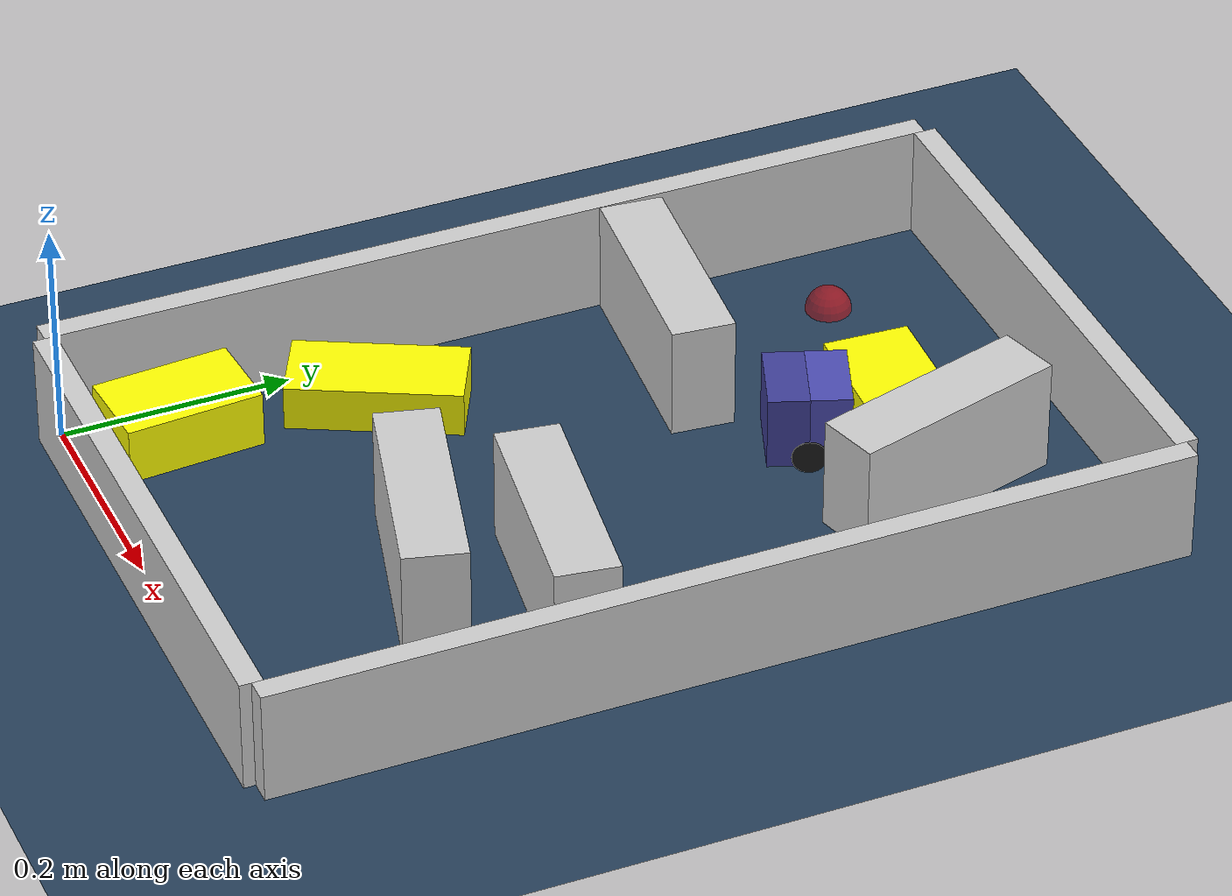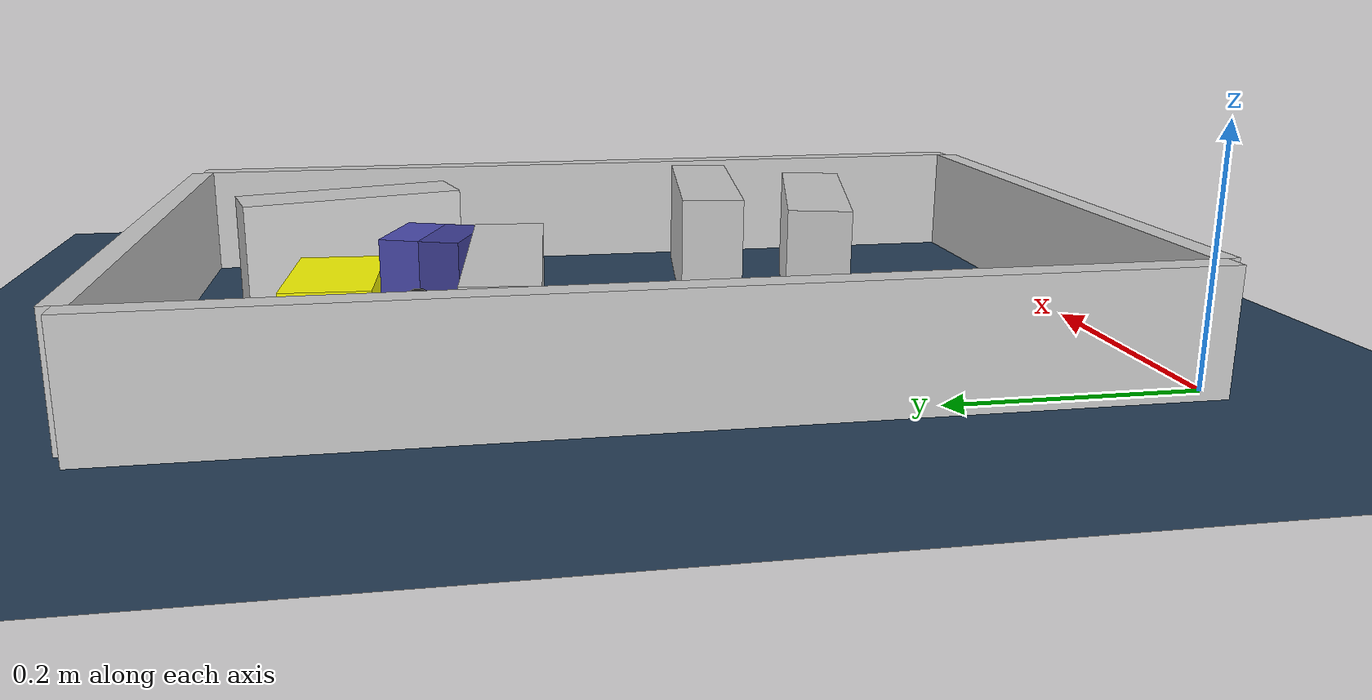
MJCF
<?xml version='1.0' encoding='utf-8'?>
<mujoco model="real_buildable">
  <compiler angle="degree" />
  <option timestep="0.002" integrator="implicitfast" iterations="100" cone="elliptic" />
  <default>
    <geom density="1" />
  </default>
  <asset>
    <texture builtin="gradient" height="3072" rgb1="0.3 0.5 0.7" rgb2="0 0 0" type="skybox" width="512" />
    <texture builtin="checker" height="300" mark="edge" markrgb="0.8 0.8 0.8" name="groundplane" rgb1="0.2 0.3 0.4" rgb2="0.1 0.2 0.3" type="2d" width="300" />
    <material name="groundplane" reflectance="0.2" texrepeat="5 5" texture="groundplane" texuniform="true" />
  </asset>
  <worldbody>
    <light dir="0 0 -1" directional="true" pos="0 0 1.5" />
    <geom name="floor" type="plane" condim="4" friction="0.5 0.005 0.001" material="groundplane" size="0 0 0.05" />
    <body name="walls">
      <geom name="wall_boundary_left" type="box" condim="4" friction="1.0 0.005 0.0001" rgba="0.8 0.8 0.8 1" pos="-0.010000 0.387500 0.050000" euler="0 0 0.000000" size="0.010000 0.397500 0.050000" />
      <geom name="wall_boundary_right" type="box" condim="4" friction="1.0 0.005 0.0001" rgba="0.8 0.8 0.8 1" pos="0.500000 0.387500 0.050000" euler="0 0 0.000000" size="0.010000 0.397500 0.050000" />
      <geom name="wall_boundary_bottom" type="box" condim="4" friction="1.0 0.005 0.0001" rgba="0.8 0.8 0.8 1" pos="0.245000 -0.010000 0.050000" euler="0 0 0.000000" size="0.245000 0.010000 0.050000" />
      <geom name="wall_boundary_top" type="box" condim="4" friction="1.0 0.005 0.0001" rgba="0.8 0.8 0.8 1" pos="0.245000 0.785000 0.050000" euler="0 0 0.000000" size="0.245000 0.010000 0.050000" />
      <geom name="wall_inner_1" type="box" condim="4" friction="1.0 0.005 0.0001" rgba="0.8 0.8 0.8 1" pos="0.302246 0.201535 0.050000" euler="0 0 -14.604486" size="0.097500 0.027500 0.050000" />
      <geom name="wall_inner_2" type="box" condim="4" friction="1.0 0.005 0.0001" rgba="0.8 0.8 0.8 1" pos="0.364854 0.292477 0.050000" euler="0 0 -8.062091" size="0.097500 0.027500 0.050000" />
      <geom name="wall_inner_3" type="box" condim="4" friction="1.0 0.005 0.0001" rgba="0.8 0.8 0.8 1" pos="0.100000 0.501000 0.050000" euler="0 0 174.900000" size="0.097500 0.027500 0.050000" />
      <geom name="wall_inner_4" type="box" condim="4" friction="1.0 0.005 0.0001" rgba="0.8 0.8 0.8 1" pos="0.354000 0.631000 0.050000" euler="0 0 105.800000" size="0.097500 0.027500 0.050000" />
    </body>
    <body name="car" pos="0.26459647958217508 0.55504406931893024 0.01" quat="0.81859256201372332 0 0 0.57437463159144531">
      <freejoint name="car_freejoint" />
      <inertial pos="0 0 0.0375" mass="0.35" diaginertia="0.000266 0.000266 0.000286" />
      <geom name="front_chassis_collision" type="box" pos="0.0175 0 0.0375" size="0.0175 0.035 0.0325" rgba="0.3 0.3 0.7 1" />
      <geom name="rear_chassis_collision" type="box" pos="-0.0175 0 0.0375" size="0.0175 0.035 0.0325" rgba="0.25 0.25 0.6 1" />
      <geom name="front_marker" type="box" pos="0.034 0 0.0505" size="0.002 0.015 0.01" rgba="1 0.2 0.2 1" contype="0" conaffinity="0" />
      <body name="rear_support_body" pos="-0.03 0 0.0025">
        <joint name="rear_caster_joint" type="ball" damping="0.0001" />
        <inertial pos="0 0 0" mass="0.025" diaginertia="0.000001 0.000001 0.000001" />
        <geom name="rear_support" type="sphere" pos="0 0 0" size="0.0025" friction="0 0 0" rgba="0.7 0.1 0.1 1" />
      </body>
      <body name="front_support_body" pos="0.03 0 0.0025">
        <joint name="front_caster_joint" type="ball" damping="0.0001" />
        <inertial pos="0 0 0" mass="0.025" diaginertia="0.000001 0.000001 0.000001" />
        <geom name="front_support" type="sphere" pos="0 0 0" size="0.0025" friction="0 0 0" rgba="0.1 0.7 0.1 1" />
      </body>
      <body name="left_wheel" pos="0 0.0375 0.015">
        <inertial pos="0 0 0" mass="0.05" diaginertia="0.000003 0.000006 0.000003" />
        <joint name="left_wheel_joint" type="hinge" axis="0 1 0" damping="0.01" armature="0.0001" />
        <geom name="left_wheel_collision" type="cylinder" size="0.015 0.0005" euler="90 0 0" rgba="0.1 0.1 0.1 1" />
      </body>
      <body name="right_wheel" pos="0 -0.0375 0.015">
        <inertial pos="0 0 0" mass="0.05" diaginertia="0.000003 0.000006 0.000003" />
        <joint name="right_wheel_joint" type="hinge" axis="0 1 0" damping="0.01" armature="0.0001" />
        <geom name="right_wheel_collision" type="cylinder" size="0.015 0.0005" euler="90 0 0" rgba="0.1 0.1 0.1 1" />
      </body>
    </body>
    <body name="obstacle_0_movable">
      <geom name="obstacle_0_movable" condim="4" pos="0.065036190608368558 0.25516837164878614 0.02" friction="1 0.005 0.0001" rgba="1 1 0 1" size="0.035000 0.075000 0.020000" type="box" mass="0.1" quat="0.23155659254010139 0 0 0.97282143502865803" />
      <joint type="free" />
    </body>
    <body name="obstacle_1_movable">
      <geom name="obstacle_1_movable" condim="4" pos="0.25174759510850075 0.638359837372657 0.025000000000000001" friction="1 0.005 0.0001" rgba="1 1 0 1" size="0.037500 0.060000 0.025000" type="box" mass="0.1" quat="0.68796227593701387 0 0 -0.72574644807092514" />
      <joint type="free" />
    </body>
    <body name="obstacle_2_movable">
      <geom name="obstacle_2_movable" condim="4" pos="0.043630000000000148 0.087460999999999761 0.025000000000000001" friction="1 0.005 0.0001" rgba="1 1 0 1" size="0.037500 0.060000 0.025000" type="box" mass="0.1" quat="0.99934662453484602 0 0 0.036143104886124724" />
      <joint type="free" />
    </body>
    <site name="goal" type="sphere" pos="0.080000 0.660000 0.0" size="0.02" rgba="1 0 0 0.5" />
  </worldbody>
  <actuator>
    <velocity name="left_wheel_drive" joint="left_wheel_joint" ctrlrange="-25 25" kv="0.75" forcerange="-0.5 0.5" />
    <velocity name="right_wheel_drive" joint="right_wheel_joint" ctrlrange="-25 25" kv="0.75" forcerange="-0.5 0.5" />
  </actuator>
</mujoco>
